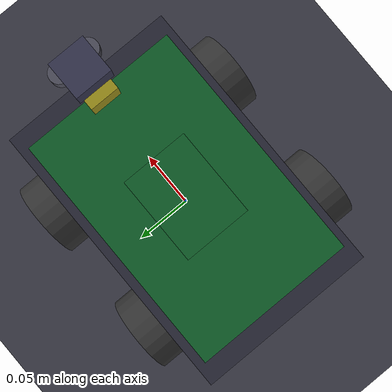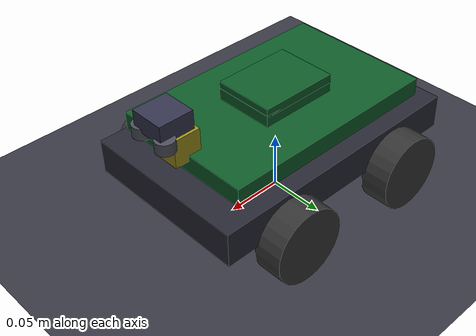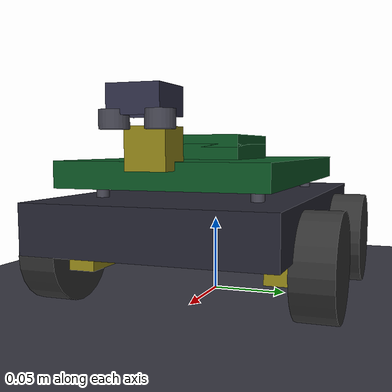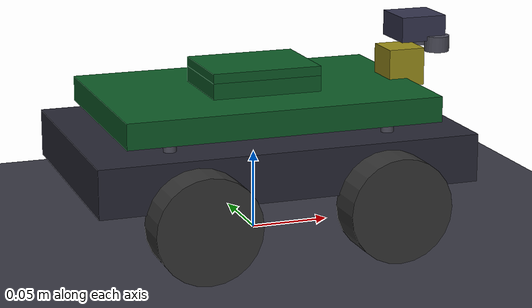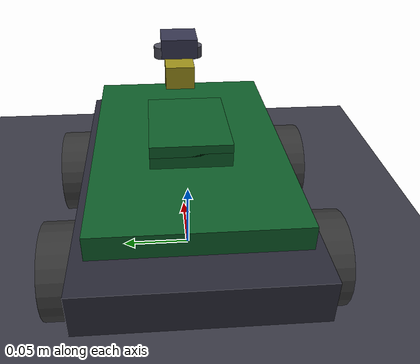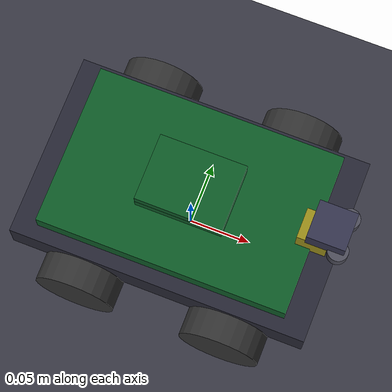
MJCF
<mujoco model="elegoo_smart_car_v4">
  <compiler angle="degree" autolimits="true"/>

  <option timestep="0.002" gravity="0 0 -9.81" iterations="50" solver="Newton"/>

  <default>
    <joint damping="0.05" armature="0.01"/>
    <geom condim="3" friction="1.0 0.005 0.001" solimp="0.95 0.99 0.001" solref="0.02 1"/>
    <motor ctrlrange="-10 10"/>
  </default>

  <asset>
    <texture name="grid" type="2d" builtin="checker" rgb1="0.25 0.25 0.3" rgb2="0.18 0.18 0.22" width="512" height="512"/>
    <material name="grid_mat" texture="grid" texrepeat="10 10" texuniform="true"/>
    <material name="chassis_mat" rgba="0.15 0.15 0.2 1"/>
    <material name="pcb_mat" rgba="0.05 0.35 0.15 1"/>
    <material name="tire_mat" rgba="0.2 0.2 0.2 1"/>
    <material name="sensor_mat" rgba="0.3 0.3 0.35 1"/>
    <material name="motor_mat" rgba="0.6 0.55 0.1 1"/>
    <material name="led_mat" rgba="0.9 0.1 0.1 1"/>
    <material name="camera_mat" rgba="0.2 0.2 0.3 1"/>
    <material name="battery_mat" rgba="0.15 0.15 0.4 1"/>
  </asset>

  <worldbody>
    <light directional="true" diffuse="0.8 0.8 0.8" specular="0.3 0.3 0.3" pos="0 0 4" dir="0 0 -1"/>
    <geom name="floor" type="plane" size="5 5 0.1" material="grid_mat"/>

    <!-- Chassis: wheels are r=0.0325, mounted at z=-0.022 relative to chassis.
         So chassis z = 0.0325 + 0.022 = 0.0545 for wheels to just touch ground. -->
    <body name="chassis" pos="0 0 0.0545">
      <freejoint name="root"/>
      <inertial pos="0 0 0" mass="0.5" diaginertia="0.002 0.003 0.004"/>

      <geom name="chassis_lower" type="box" size="0.12 0.075 0.015" pos="0 0 0" material="chassis_mat"/>
      <geom name="chassis_upper" type="box" size="0.10 0.065 0.008" pos="0 0 0.03" material="pcb_mat"/>

      <geom name="standoff_fl" type="cylinder" size="0.004 0.015" pos="0.07 0.05 0.015" material="sensor_mat"/>
      <geom name="standoff_fr" type="cylinder" size="0.004 0.015" pos="0.07 -0.05 0.015" material="sensor_mat"/>
      <geom name="standoff_rl" type="cylinder" size="0.004 0.015" pos="-0.07 0.05 0.015" material="sensor_mat"/>
      <geom name="standoff_rr" type="cylinder" size="0.004 0.015" pos="-0.07 -0.05 0.015" material="sensor_mat"/>

      <geom name="battery" type="box" size="0.035 0.03 0.012" pos="-0.03 0 0.015" material="battery_mat" mass="0.15"/>
      <geom name="arduino" type="box" size="0.035 0.027 0.005" pos="0 0 0.043" material="pcb_mat"/>
      <geom name="motor_shield" type="box" size="0.035 0.027 0.004" pos="0 0 0.05" material="pcb_mat"/>

      <geom name="ultrasonic_l" type="cylinder" size="0.008 0.005" pos="0.12 0.013 0.06" material="sensor_mat"/>
      <geom name="ultrasonic_r" type="cylinder" size="0.008 0.005" pos="0.12 -0.013 0.06" material="sensor_mat"/>
      <geom name="servo_base" type="box" size="0.012 0.012 0.012" pos="0.10 0 0.045" material="motor_mat"/>
      <geom name="camera" type="box" size="0.015 0.015 0.008" pos="0.11 0 0.07" material="camera_mat"/>

      <geom name="ir_left" type="box" size="0.005 0.003 0.002" pos="0.10 0.02 -0.015" material="led_mat"/>
      <geom name="ir_center" type="box" size="0.005 0.003 0.002" pos="0.10 0 -0.015" material="led_mat"/>
      <geom name="ir_right" type="box" size="0.005 0.003 0.002" pos="0.10 -0.02 -0.015" material="led_mat"/>

      <site name="imu_site" pos="0 0 0.03" size="0.005"/>

      <!-- Wheel bodies: pos z=-0.022 puts wheel center below chassis.
           Cylinder default axis=Z, so euler="90 0 0" rotates axis to Y.
           Joint hinge axis="0 1 0" rotates around Y. -->

      <body name="wheel_lf" pos="0.06 0.085 -0.022">
        <joint name="joint_lf" type="hinge" axis="0 1 0"/>
        <inertial pos="0 0 0" mass="0.04" diaginertia="0.00002 0.00003 0.00002"/>
        <geom name="motor_lf" type="box" size="0.015 0.012 0.01" pos="0 -0.018 0" material="motor_mat" contype="0" conaffinity="0"/>
        <geom name="wheel_lf_geom" type="cylinder" size="0.0325 0.0125" euler="90 0 0" material="tire_mat" friction="1.2 0.005 0.001"/>
      </body>

      <body name="wheel_rf" pos="0.06 -0.085 -0.022">
        <joint name="joint_rf" type="hinge" axis="0 1 0"/>
        <inertial pos="0 0 0" mass="0.04" diaginertia="0.00002 0.00003 0.00002"/>
        <geom name="motor_rf" type="box" size="0.015 0.012 0.01" pos="0 0.018 0" material="motor_mat" contype="0" conaffinity="0"/>
        <geom name="wheel_rf_geom" type="cylinder" size="0.0325 0.0125" euler="90 0 0" material="tire_mat" friction="1.2 0.005 0.001"/>
      </body>

      <body name="wheel_lr" pos="-0.06 0.085 -0.022">
        <joint name="joint_lr" type="hinge" axis="0 1 0"/>
        <inertial pos="0 0 0" mass="0.04" diaginertia="0.00002 0.00003 0.00002"/>
        <geom name="motor_lr" type="box" size="0.015 0.012 0.01" pos="0 -0.018 0" material="motor_mat" contype="0" conaffinity="0"/>
        <geom name="wheel_lr_geom" type="cylinder" size="0.0325 0.0125" euler="90 0 0" material="tire_mat" friction="1.2 0.005 0.001"/>
      </body>

      <body name="wheel_rr" pos="-0.06 -0.085 -0.022">
        <joint name="joint_rr" type="hinge" axis="0 1 0"/>
        <inertial pos="0 0 0" mass="0.04" diaginertia="0.00002 0.00003 0.00002"/>
        <geom name="motor_rr" type="box" size="0.015 0.012 0.01" pos="0 0.018 0" material="motor_mat" contype="0" conaffinity="0"/>
        <geom name="wheel_rr_geom" type="cylinder" size="0.0325 0.0125" euler="90 0 0" material="tire_mat" friction="1.2 0.005 0.001"/>
      </body>

    </body>
  </worldbody>

  <actuator>
    <velocity name="act_lf" joint="joint_lf" kv="0.5"/>
    <velocity name="act_rf" joint="joint_rf" kv="0.5"/>
    <velocity name="act_lr" joint="joint_lr" kv="0.5"/>
    <velocity name="act_rr" joint="joint_rr" kv="0.5"/>
  </actuator>

  <sensor>
    <jointvel name="vel_lf" joint="joint_lf"/>
    <jointvel name="vel_rf" joint="joint_rf"/>
    <jointvel name="vel_lr" joint="joint_lr"/>
    <jointvel name="vel_rr" joint="joint_rr"/>
    <accelerometer name="imu_accel" site="imu_site"/>
    <gyro name="imu_gyro" site="imu_site"/>
    <framepos name="chassis_pos" objtype="body" objname="chassis"/>
    <framequat name="chassis_quat" objtype="body" objname="chassis"/>
    <framelinvel name="chassis_linvel" objtype="body" objname="chassis"/>
    <frameangvel name="chassis_angvel" objtype="body" objname="chassis"/>
  </sensor>

</mujoco>
